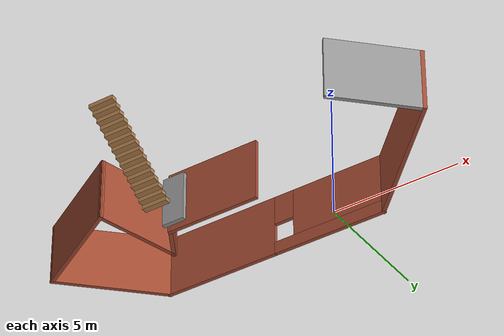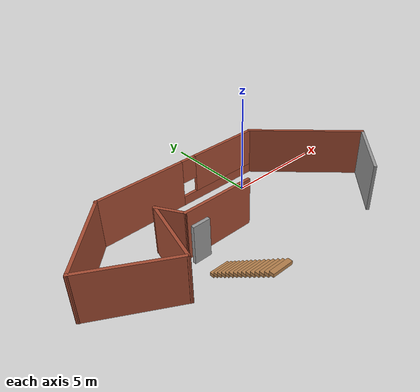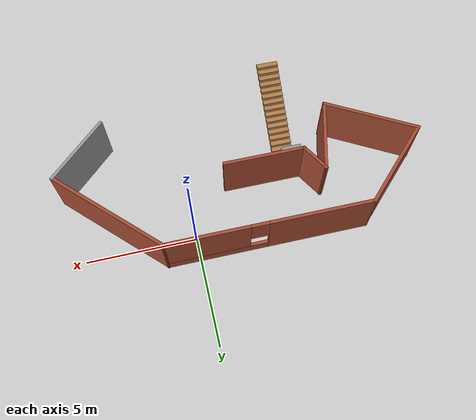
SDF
<?xml version='1.0'?>
<sdf version='1.6'>
  <model name='creado'>
    <pose frame=''>-2.58301 -3.04487 0 0 -0 0</pose>
    <link name='Door_0'>
      <collision name='Door_0_Collision'>
        <geometry>
          <box>
            <size>0.9 0.17 2</size>
          </box>
        </geometry>
        <pose frame=''>0 0 1 0 -0 0</pose>
      </collision>
      <visual name='Door_0_Visual'>
        <pose frame=''>0 0 1 0 -0 0</pose>
        <geometry>
          <box>
            <size>0.9 0.17 2</size>
          </box>
        </geometry>
        <material>
          <script>
            <uri>file://media/materials/scripts/gazebo.material</uri>
            <name>Gazebo/Grey</name>
          </script>
        </material>
      </visual>
      <pose frame=''>-2.40699 0.404868 0 0 -0 0</pose>
    </link>
    <link name='Stairs_0'>
      <visual name='Stairs_0_Visual_0'>
        <pose frame=''>-2.36699 -0.731799 0.083333 0 -0 0</pose>
        <geometry>
          <box>
            <size>1 0.233333 0.166667</size>
          </box>
        </geometry>
        <material>
          <script>
            <uri>file://media/materials/scripts/gazebo.material</uri>
            <name>Gazebo/Wood</name>
          </script>
          <ambient>1 1 1 1</ambient>
        </material>
        <meta>
          <layer>0</layer>
        </meta>
      </visual>
      <collision name='Stairs_0_Collision_0'>
        <geometry>
          <box>
            <size>1 0.233333 0.166667</size>
          </box>
        </geometry>
        <pose frame=''>-2.36699 -0.731799 0.083333 0 -0 0</pose>
      </collision>
      <visual name='Stairs_0_Visual_1'>
        <pose frame=''>-2.36699 -0.965132 0.25 0 -0 0</pose>
        <geometry>
          <box>
            <size>1 0.233333 0.166667</size>
          </box>
        </geometry>
        <material>
          <script>
            <uri>file://media/materials/scripts/gazebo.material</uri>
            <name>Gazebo/Wood</name>
          </script>
          <ambient>1 1 1 1</ambient>
        </material>
        <meta>
          <layer>0</layer>
        </meta>
      </visual>
      <collision name='Stairs_0_Collision_1'>
        <geometry>
          <box>
            <size>1 0.233333 0.166667</size>
          </box>
        </geometry>
        <pose frame=''>-2.36699 -0.965132 0.25 0 -0 0</pose>
      </collision>
      <visual name='Stairs_0_Visual_2'>
        <pose frame=''>-2.36699 -1.19846 0.416667 0 -0 0</pose>
        <geometry>
          <box>
            <size>1 0.233333 0.166667</size>
          </box>
        </geometry>
        <material>
          <script>
            <uri>file://media/materials/scripts/gazebo.material</uri>
            <name>Gazebo/Wood</name>
          </script>
          <ambient>1 1 1 1</ambient>
        </material>
        <meta>
          <layer>0</layer>
        </meta>
      </visual>
      <collision name='Stairs_0_Collision_2'>
        <geometry>
          <box>
            <size>1 0.233333 0.166667</size>
          </box>
        </geometry>
        <pose frame=''>-2.36699 -1.19846 0.416667 0 -0 0</pose>
      </collision>
      <visual name='Stairs_0_Visual_3'>
        <pose frame=''>-2.36699 -1.4318 0.583333 0 -0 0</pose>
        <geometry>
          <box>
            <size>1 0.233333 0.166667</size>
          </box>
        </geometry>
        <material>
          <script>
            <uri>file://media/materials/scripts/gazebo.material</uri>
            <name>Gazebo/Wood</name>
          </script>
          <ambient>1 1 1 1</ambient>
        </material>
        <meta>
          <layer>0</layer>
        </meta>
      </visual>
      <collision name='Stairs_0_Collision_3'>
        <geometry>
          <box>
            <size>1 0.233333 0.166667</size>
          </box>
        </geometry>
        <pose frame=''>-2.36699 -1.4318 0.583333 0 -0 0</pose>
      </collision>
      <visual name='Stairs_0_Visual_4'>
        <pose frame=''>-2.36699 -1.66513 0.75 0 -0 0</pose>
        <geometry>
          <box>
            <size>1 0.233333 0.166667</size>
          </box>
        </geometry>
        <material>
          <script>
            <uri>file://media/materials/scripts/gazebo.material</uri>
            <name>Gazebo/Wood</name>
          </script>
          <ambient>1 1 1 1</ambient>
        </material>
        <meta>
          <layer>0</layer>
        </meta>
      </visual>
      <collision name='Stairs_0_Collision_4'>
        <geometry>
          <box>
            <size>1 0.233333 0.166667</size>
          </box>
        </geometry>
        <pose frame=''>-2.36699 -1.66513 0.75 0 -0 0</pose>
      </collision>
      <visual name='Stairs_0_Visual_5'>
        <pose frame=''>-2.36699 -1.89847 0.916667 0 -0 0</pose>
        <geometry>
          <box>
            <size>1 0.233333 0.166667</size>
          </box>
        </geometry>
        <material>
          <script>
            <uri>file://media/materials/scripts/gazebo.material</uri>
            <name>Gazebo/Wood</name>
          </script>
          <ambient>1 1 1 1</ambient>
        </material>
        <meta>
          <layer>0</layer>
        </meta>
      </visual>
      <collision name='Stairs_0_Collision_5'>
        <geometry>
          <box>
            <size>1 0.233333 0.166667</size>
          </box>
        </geometry>
        <pose frame=''>-2.36699 -1.89847 0.916667 0 -0 0</pose>
      </collision>
      <visual name='Stairs_0_Visual_6'>
        <pose frame=''>-2.36699 -2.1318 1.08333 0 -0 0</pose>
        <geometry>
          <box>
            <size>1 0.233333 0.166667</size>
          </box>
        </geometry>
        <material>
          <script>
            <uri>file://media/materials/scripts/gazebo.material</uri>
            <name>Gazebo/Wood</name>
          </script>
          <ambient>1 1 1 1</ambient>
        </material>
        <meta>
          <layer>0</layer>
        </meta>
      </visual>
      <collision name='Stairs_0_Collision_6'>
        <geometry>
          <box>
            <size>1 0.233333 0.166667</size>
          </box>
        </geometry>
        <pose frame=''>-2.36699 -2.1318 1.08333 0 -0 0</pose>
      </collision>
      <visual name='Stairs_0_Visual_7'>
        <pose frame=''>-2.36699 -2.36513 1.25 0 -0 0</pose>
        <geometry>
          <box>
            <size>1 0.233333 0.166667</size>
          </box>
        </geometry>
        <material>
          <script>
            <uri>file://media/materials/scripts/gazebo.material</uri>
            <name>Gazebo/Wood</name>
          </script>
          <ambient>1 1 1 1</ambient>
        </material>
        <meta>
          <layer>0</layer>
        </meta>
      </visual>
      <collision name='Stairs_0_Collision_7'>
        <geometry>
          <box>
            <size>1 0.233333 0.166667</size>
          </box>
        </geometry>
        <pose frame=''>-2.36699 -2.36513 1.25 0 -0 0</pose>
      </collision>
      <visual name='Stairs_0_Visual_8'>
        <pose frame=''>-2.36699 -2.59847 1.41667 0 -0 0</pose>
        <geometry>
          <box>
            <size>1 0.233333 0.166667</size>
          </box>
        </geometry>
        <material>
          <script>
            <uri>file://media/materials/scripts/gazebo.material</uri>
            <name>Gazebo/Wood</name>
          </script>
          <ambient>1 1 1 1</ambient>
        </material>
        <meta>
          <layer>0</layer>
        </meta>
      </visual>
      <collision name='Stairs_0_Collision_8'>
        <geometry>
          <box>
            <size>1 0.233333 0.166667</size>
          </box>
        </geometry>
        <pose frame=''>-2.36699 -2.59847 1.41667 0 -0 0</pose>
      </collision>
      <visual name='Stairs_0_Visual_9'>
        <pose frame=''>-2.36699 -2.8318 1.58333 0 -0 0</pose>
        <geometry>
          <box>
            <size>1 0.233333 0.166667</size>
          </box>
        </geometry>
        <material>
          <script>
            <uri>file://media/materials/scripts/gazebo.material</uri>
            <name>Gazebo/Wood</name>
          </script>
          <ambient>1 1 1 1</ambient>
        </material>
        <meta>
          <layer>0</layer>
        </meta>
      </visual>
      <collision name='Stairs_0_Collision_9'>
        <geometry>
          <box>
            <size>1 0.233333 0.166667</size>
          </box>
        </geometry>
        <pose frame=''>-2.36699 -2.8318 1.58333 0 -0 0</pose>
      </collision>
      <visual name='Stairs_0_Visual_10'>
        <pose frame=''>-2.36699 -3.06513 1.75 0 -0 0</pose>
        <geometry>
          <box>
            <size>1 0.233333 0.166667</size>
          </box>
        </geometry>
        <material>
          <script>
            <uri>file://media/materials/scripts/gazebo.material</uri>
            <name>Gazebo/Wood</name>
          </script>
          <ambient>1 1 1 1</ambient>
        </material>
        <meta>
          <layer>0</layer>
        </meta>
      </visual>
      <collision name='Stairs_0_Collision_10'>
        <geometry>
          <box>
            <size>1 0.233333 0.166667</size>
          </box>
        </geometry>
        <pose frame=''>-2.36699 -3.06513 1.75 0 -0 0</pose>
      </collision>
      <visual name='Stairs_0_Visual_11'>
        <pose frame=''>-2.36699 -3.29847 1.91667 0 -0 0</pose>
        <geometry>
          <box>
            <size>1 0.233333 0.166667</size>
          </box>
        </geometry>
        <material>
          <script>
            <uri>file://media/materials/scripts/gazebo.material</uri>
            <name>Gazebo/Wood</name>
          </script>
          <ambient>1 1 1 1</ambient>
        </material>
        <meta>
          <layer>0</layer>
        </meta>
      </visual>
      <collision name='Stairs_0_Collision_11'>
        <geometry>
          <box>
            <size>1 0.233333 0.166667</size>
          </box>
        </geometry>
        <pose frame=''>-2.36699 -3.29847 1.91667 0 -0 0</pose>
      </collision>
      <visual name='Stairs_0_Visual_12'>
        <pose frame=''>-2.36699 -3.5318 2.08333 0 -0 0</pose>
        <geometry>
          <box>
            <size>1 0.233333 0.166667</size>
          </box>
        </geometry>
        <material>
          <script>
            <uri>file://media/materials/scripts/gazebo.material</uri>
            <name>Gazebo/Wood</name>
          </script>
          <ambient>1 1 1 1</ambient>
        </material>
        <meta>
          <layer>0</layer>
        </meta>
      </visual>
      <collision name='Stairs_0_Collision_12'>
        <geometry>
          <box>
            <size>1 0.233333 0.166667</size>
          </box>
        </geometry>
        <pose frame=''>-2.36699 -3.5318 2.08333 0 -0 0</pose>
      </collision>
      <visual name='Stairs_0_Visual_13'>
        <pose frame=''>-2.36699 -3.76513 2.25 0 -0 0</pose>
        <geometry>
          <box>
            <size>1 0.233333 0.166667</size>
          </box>
        </geometry>
        <material>
          <script>
            <uri>file://media/materials/scripts/gazebo.material</uri>
            <name>Gazebo/Wood</name>
          </script>
          <ambient>1 1 1 1</ambient>
        </material>
        <meta>
          <layer>0</layer>
        </meta>
      </visual>
      <collision name='Stairs_0_Collision_13'>
        <geometry>
          <box>
            <size>1 0.233333 0.166667</size>
          </box>
        </geometry>
        <pose frame=''>-2.36699 -3.76513 2.25 0 -0 0</pose>
      </collision>
      <visual name='Stairs_0_Visual_14'>
        <pose frame=''>-2.36699 -3.99846 2.41667 0 -0 0</pose>
        <geometry>
          <box>
            <size>1 0.233333 0.166667</size>
          </box>
        </geometry>
        <material>
          <script>
            <uri>file://media/materials/scripts/gazebo.material</uri>
            <name>Gazebo/Wood</name>
          </script>
          <ambient>1 1 1 1</ambient>
        </material>
        <meta>
          <layer>0</layer>
        </meta>
      </visual>
      <collision name='Stairs_0_Collision_14'>
        <geometry>
          <box>
            <size>1 0.233333 0.166667</size>
          </box>
        </geometry>
        <pose frame=''>-2.36699 -3.99846 2.41667 0 -0 0</pose>
      </collision>
    </link>
    <link name='Wall_0'>
      <collision name='Wall_0_Collision'>
        <geometry>
          <box>
            <size>3.75 0.15 2.5</size>
          </box>
        </geometry>
        <pose frame=''>0 0 1.25 0 -0 0</pose>
      </collision>
      <visual name='Wall_0_Visual'>
        <pose frame=''>0 0 1.25 0 -0 0</pose>
        <geometry>
          <box>
            <size>3.75 0.15 2.5</size>
          </box>
        </geometry>
        <material>
          <script>
            <uri>file://media/materials/scripts/gazebo.material</uri>
            <name>Gazebo/Bricks</name>
          </script>
          <ambient>1 1 1 1</ambient>
        </material>
        <meta>
          <layer>0</layer>
        </meta>
      </visual>
      <pose frame=''>-1.04699 0.824868 0 0 -0 3.14159</pose>
    </link>
    <link name='Wall_1'>
      <collision name='Wall_1_Collision'>
        <geometry>
          <box>
            <size>1.5 0.15 2.5</size>
          </box>
        </geometry>
        <pose frame=''>0 0 1.25 0 -0 0</pose>
      </collision>
      <visual name='Wall_1_Visual'>
        <pose frame=''>0 0 1.25 0 -0 0</pose>
        <geometry>
          <box>
            <size>1.5 0.15 2.5</size>
          </box>
        </geometry>
        <material>
          <script>
            <uri>file://media/materials/scripts/gazebo.material</uri>
            <name>Gazebo/Bricks</name>
          </script>
          <ambient>1 1 1 1</ambient>
        </material>
        <meta>
          <layer>0</layer>
        </meta>
      </visual>
      <pose frame=''>-3.18449 1.40943 0 0 -0 2.0944</pose>
    </link>
    <link name='Wall_2'>
      <collision name='Wall_2_Collision'>
        <geometry>
          <box>
            <size>3.5 0.15 2.5</size>
          </box>
        </geometry>
        <pose frame=''>0 0 1.25 0 -0 0</pose>
      </collision>
      <visual name='Wall_2_Visual'>
        <pose frame=''>0 0 1.25 0 -0 0</pose>
        <geometry>
          <box>
            <size>3.5 0.15 2.5</size>
          </box>
        </geometry>
        <material>
          <script>
            <uri>file://media/materials/scripts/gazebo.material</uri>
            <name>Gazebo/Bricks</name>
          </script>
          <ambient>1 1 1 1</ambient>
        </material>
        <meta>
          <layer>0</layer>
        </meta>
      </visual>
      <pose frame=''>-3.95551 0.376077 0 0 -0 -1.8326</pose>
    </link>
    <link name='Wall_3'>
      <collision name='Wall_3_Collision'>
        <geometry>
          <box>
            <size>4.5 0.15 2.5</size>
          </box>
        </geometry>
        <pose frame=''>0 0 1.25 0 -0 0</pose>
      </collision>
      <visual name='Wall_3_Visual'>
        <pose frame=''>0 0 1.25 0 -0 0</pose>
        <geometry>
          <box>
            <size>4.5 0.15 2.5</size>
          </box>
        </geometry>
        <material>
          <script>
            <uri>file://media/materials/scripts/gazebo.material</uri>
            <name>Gazebo/Bricks</name>
          </script>
          <ambient>1 1 1 1</ambient>
        </material>
        <meta>
          <layer>0</layer>
        </meta>
      </visual>
      <pose frame=''>-6.27264 -0.154349 0 0 -0 2.61799</pose>
    </link>
    <link name='Wall_4'>
      <collision name='Wall_4_Collision'>
        <geometry>
          <box>
            <size>4.5 0.15 2.5</size>
          </box>
        </geometry>
        <pose frame=''>0 0 1.25 0 -0 0</pose>
      </collision>
      <visual name='Wall_4_Visual'>
        <pose frame=''>0 0 1.25 0 -0 0</pose>
        <geometry>
          <box>
            <size>4.5 0.15 2.5</size>
          </box>
        </geometry>
        <material>
          <script>
            <uri>file://media/materials/scripts/gazebo.material</uri>
            <name>Gazebo/Bricks</name>
          </script>
          <ambient>1 1 1 1</ambient>
        </material>
        <meta>
          <layer>0</layer>
        </meta>
      </visual>
      <pose frame=''>-6.61829 2.47111 0 0 -0 0.785398</pose>
    </link>
    <link name='Wall_5'>
      <pose frame=''>-0.530331 4.00906 0 0 -0 0</pose>
      <visual name='Wall_5_Visual_0'>
        <pose frame=''>-2.2893 0 1.25 0 -0 0</pose>
        <geometry>
          <box>
            <size>4.6714 0.15 2.5</size>
          </box>
        </geometry>
        <material>
          <script>
            <uri>file://media/materials/scripts/gazebo.material</uri>
            <name>Gazebo/Bricks</name>
          </script>
          <ambient>1 1 1 1</ambient>
        </material>
        <meta>
          <layer>0</layer>
        </meta>
      </visual>
      <collision name='Wall_5_Collision_0'>
        <geometry>
          <box>
            <size>4.6714 0.15 2.5</size>
          </box>
        </geometry>
        <pose frame=''>-2.2893 0 1.25 0 -0 0</pose>
      </collision>
      <visual name='Wall_5_Visual_1'>
        <pose frame=''>2.3357 0 0.25 0 -0 0</pose>
        <geometry>
          <box>
            <size>4.5786 0.15 0.5</size>
          </box>
        </geometry>
        <material>
          <script>
            <uri>file://media/materials/scripts/gazebo.material</uri>
            <name>Gazebo/Bricks</name>
          </script>
          <ambient>1 1 1 1</ambient>
        </material>
        <meta>
          <layer>0</layer>
        </meta>
      </visual>
      <collision name='Wall_5_Collision_1'>
        <geometry>
          <box>
            <size>4.5786 0.15 0.5</size>
          </box>
        </geometry>
        <pose frame=''>2.3357 0 0.25 0 -0 0</pose>
      </collision>
      <visual name='Wall_5_Visual_2'>
        <pose frame=''>2.7357 0 1.5 0 -0 0</pose>
        <geometry>
          <box>
            <size>3.7786 0.15 2</size>
          </box>
        </geometry>
        <material>
          <script>
            <uri>file://media/materials/scripts/gazebo.material</uri>
            <name>Gazebo/Bricks</name>
          </script>
          <ambient>1 1 1 1</ambient>
        </material>
        <meta>
          <layer>0</layer>
        </meta>
      </visual>
      <collision name='Wall_5_Collision_2'>
        <geometry>
          <box>
            <size>3.7786 0.15 2</size>
          </box>
        </geometry>
        <pose frame=''>2.7357 0 1.5 0 -0 0</pose>
      </collision>
      <visual name='Wall_5_Visual_3'>
        <pose frame=''>0.446401 0 1.9 0 -0 0</pose>
        <geometry>
          <box>
            <size>0.8 0.15 1.2</size>
          </box>
        </geometry>
        <material>
          <script>
            <uri>file://media/materials/scripts/gazebo.material</uri>
            <name>Gazebo/Bricks</name>
          </script>
          <ambient>1 1 1 1</ambient>
        </material>
        <meta>
          <layer>0</layer>
        </meta>
      </visual>
      <collision name='Wall_5_Collision_3'>
        <geometry>
          <box>
            <size>0.8 0.15 1.2</size>
          </box>
        </geometry>
        <pose frame=''>0.446401 0 1.9 0 -0 0</pose>
      </collision>
    </link>
    <link name='Wall_6'>
      <collision name='Wall_6_Collision'>
        <geometry>
          <box>
            <size>6 0.15 2.5</size>
          </box>
        </geometry>
        <pose frame=''>0 0 1.25 0 -0 0</pose>
      </collision>
      <visual name='Wall_6_Visual'>
        <pose frame=''>0 0 1.25 0 -0 0</pose>
        <geometry>
          <box>
            <size>6 0.15 2.5</size>
          </box>
        </geometry>
        <material>
          <script>
            <uri>file://media/materials/scripts/gazebo.material</uri>
            <name>Gazebo/Bricks</name>
          </script>
          <ambient>1 1 1 1</ambient>
        </material>
        <meta>
          <layer>0</layer>
        </meta>
      </visual>
      <pose frame=''>6.08796 1.94078 0 0 -0 -0.785398</pose>
    </link>
    <link name='Wall_7'>
      <collision name='Wall_7_Collision'>
        <geometry>
          <box>
            <size>3.5 0.15 2.5</size>
          </box>
        </geometry>
        <pose frame=''>0 0 1.25 0 -0 0</pose>
      </collision>
      <visual name='Wall_7_Visual'>
        <pose frame=''>0 0 1.25 0 -0 0</pose>
        <geometry>
          <box>
            <size>3.5 0.15 2.5</size>
          </box>
        </geometry>
        <material>
          <script>
            <uri>file://media/materials/scripts/gazebo.material</uri>
            <name>Gazebo/Grey</name>
          </script>
          <ambient>1 1 1 1</ambient>
        </material>
        <meta>
          <layer>0</layer>
        </meta>
      </visual>
      <pose frame=''>6.97184 -1.31191 0 0 -0 -2.35619</pose>
    </link>
    <static>1</static>
  </model>
</sdf>
